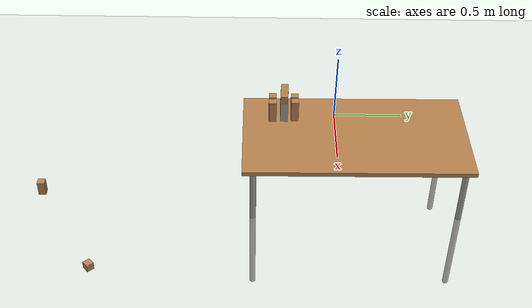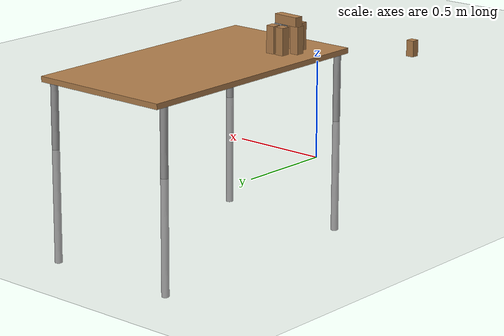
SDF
<sdf version="1.4">
 <world name="default">
  <model name="ground_plane">
   <static>1</static>
   <link name="link">
    <collision name="collision">
     <geometry><plane><normal>0 0 1</normal><size>100 100</size></plane></geometry>
     <surface><friction><ode><mu>100</mu><mu2>50</mu2></ode></friction></surface>
    </collision>
    <visual name="visual">
     <cast_shadows>0</cast_shadows>
     <geometry><plane><normal>0 0 1</normal><size>100 100</size></plane></geometry>
     <material>
      <script><uri>file://media/materials/scripts/gazebo.material</uri><name>Gazebo/Grey</name></script>
     </material>
    </visual>
    <velocity_decay><linear>0</linear><angular>0</angular></velocity_decay>
   </link>
  </model>
  <light name="sun" type="directional">
   <pose>0 0 10 0 -0 0</pose>
   <diffuse>0.8 0.8 0.8 1</diffuse>
   <specular>0.2 0.2 0.2 1</specular>
   <attenuation>
    <range>1000</range>
    <constant>0.9</constant>
    <linear>0.01</linear>
    <quadratic>0.001</quadratic>
   </attenuation>
   <direction>-0.5 0.1 -0.9</direction>
  </light>
  <physics type="ode">
   <real_time_update_rate>1000</real_time_update_rate>
   <gravity>0 0 -9.81</gravity>
   <max_step_size>0.001</max_step_size>
   <real_time_factor>1</real_time_factor>
  </physics>
  <scene><ambient>0.4 0.4 0.4 1</ambient><background>0.7 0.7 0.7 1</background><shadows>1</shadows></scene>
  <spherical_coordinates>
   <surface_model>EARTH_WGS84</surface_model>
   <latitude_deg>0</latitude_deg>
   <longitude_deg>0</longitude_deg>
   <elevation>0</elevation>
   <heading_deg>0</heading_deg>
  </spherical_coordinates>
  <model name="custom_2">
   <link name="link">
    <inertial>
     <mass>0.0565</mass>
     <inertia>
      <ixx>2.35417e-05</ixx>
      <ixy>0</ixy>
      <ixz>0</ixz>
      <iyy>2.35417e-05</iyy>
      <iyz>0</iyz>
      <izz>2.35417e-05</izz>
     </inertia>
    </inertial>
    <collision name="collision">
     <geometry><box><size>0.05 0.05 0.1</size></box></geometry>
     <surface><contact><ode><max_vel>0.1</max_vel><min_depth>0.001</min_depth></ode></contact></surface>
    </collision>
    <visual name="visual">
     <geometry><box><size>0.05 0.05 0.1</size></box></geometry>
     <material>
      <script><uri>file://media/materials/scripts/gazebo.material</uri><name>Gazebo/Wood</name></script>
     </material>
    </visual>
    <velocity_decay><linear>0</linear><angular>0</angular></velocity_decay>
   </link>
   <pose>0.913406 -2.02896 0.049512 -5.6e-05 -0 -0.000109</pose>
   <static>0</static>
  </model>
  <model name="custom_3">
   <link name="link">
    <inertial>
     <mass>0.0565</mass>
     <inertia>
      <ixx>2.35417e-05</ixx>
      <ixy>0</ixy>
      <ixz>0</ixz>
      <iyy>2.35417e-05</iyy>
      <iyz>0</iyz>
      <izz>2.35417e-05</izz>
     </inertia>
    </inertial>
    <collision name="collision">
     <geometry><box><size>0.05 0.05 0.05</size></box></geometry>
     <surface><contact><ode><max_vel>0.1</max_vel><min_depth>0.001</min_depth></ode></contact></surface>
    </collision>
    <visual name="visual">
     <geometry><box><size>0.05 0.05 0.05</size></box></geometry>
     <material>
      <script><uri>file://media/materials/scripts/gazebo.material</uri><name>Gazebo/Wood</name></script>
     </material>
    </visual>
    <velocity_decay><linear>0</linear><angular>0</angular></velocity_decay>
   </link>
   <pose>1.60991 -1.60356 0.024984 0.000105 0.000442 0.713165</pose>
   <static>0</static>
  </model>
  <model name="custom_1_0">
   <link name="link">
    <inertial>
     <mass>0.0565</mass>
     <inertia>
      <ixx>2.35417e-05</ixx>
      <ixy>0</ixy>
      <ixz>0</ixz>
      <iyy>2.35417e-05</iyy>
      <iyz>0</iyz>
      <izz>2.35417e-05</izz>
     </inertia>
    </inertial>
    <collision name="collision">
     <geometry><box><size>0.05 0.05 0.15</size></box></geometry>
     <surface><contact><ode><max_vel>0.1</max_vel><min_depth>0.001</min_depth></ode></contact></surface>
    </collision>
    <visual name="visual">
     <geometry><box><size>0.05 0.05 0.15</size></box></geometry>
     <material>
      <script><uri>file://media/materials/scripts/gazebo.material</uri><name>Gazebo/Wood</name></script>
     </material>
    </visual>
    <velocity_decay><linear>0</linear><angular>0</angular></velocity_decay>
   </link>
   <pose>0.566712 -0.320852 0.467843 0.004757 -0.000388 -1.53801</pose>
   <static>0</static>
  </model>
  <model name="custom_table">
   <static>1</static>
   <link name="link">
    <collision name="surface">
     <geometry><box><size>1.5 0.8 0.03</size></box></geometry>
     <surface><friction><ode><mu>0.6</mu><mu2>0.6</mu2></ode></friction></surface>
    </collision>
    <visual name="visual1">
     <geometry><box><size>1.5 0.8 0.03</size></box></geometry>
     <material>
      <script><uri>file://media/materials/scripts/gazebo.material</uri><name>Gazebo/Wood</name></script>
     </material>
    </visual>
    <collision name="front_left_leg">
     <pose>0.68 0.38 0.5 0 -0 0</pose>
     <geometry><cylinder><radius>0.02</radius><length>1</length></cylinder></geometry>
    </collision>
    <visual name="front_left_leg">
     <pose>0.68 0.38 0.5 0 -0 0</pose>
     <geometry><cylinder><radius>0.02</radius><length>1</length></cylinder></geometry>
     <material>
      <script><uri>file://media/materials/scripts/gazebo.material</uri><name>Gazebo/Grey</name></script>
     </material>
    </visual>
    <collision name="front_right_leg">
     <pose>0.68 -0.38 0.5 0 -0 0</pose>
     <geometry><cylinder><radius>0.02</radius><length>1</length></cylinder></geometry>
    </collision>
    <visual name="front_right_leg">
     <pose>0.68 -0.38 0.5 0 -0 0</pose>
     <geometry><cylinder><radius>0.02</radius><length>1</length></cylinder></geometry>
     <material>
      <script><uri>file://media/materials/scripts/gazebo.material</uri><name>Gazebo/Grey</name></script>
     </material>
    </visual>
    <collision name="back_right_leg">
     <pose>-0.68 -0.38 0.5 0 -0 0</pose>
     <geometry><cylinder><radius>0.02</radius><length>1</length></cylinder></geometry>
    </collision>
    <visual name="back_right_leg">
     <pose>-0.68 -0.38 0.5 0 -0 0</pose>
     <geometry><cylinder><radius>0.02</radius><length>1</length></cylinder></geometry>
     <material>
      <script><uri>file://media/materials/scripts/gazebo.material</uri><name>Gazebo/Grey</name></script>
     </material>
    </visual>
    <collision name="back_left_leg">
     <pose>-0.68 0.38 0.5 0 -0 0</pose>
     <geometry><cylinder><radius>0.02</radius><length>1</length></cylinder></geometry>
    </collision>
    <visual name="back_left_leg">
     <pose>-0.68 0.38 0.5 0 -0 0</pose>
     <geometry><cylinder><radius>0.02</radius><length>1</length></cylinder></geometry>
     <material>
      <script><uri>file://media/materials/scripts/gazebo.material</uri><name>Gazebo/Grey</name></script>
     </material>
    </visual>
    <velocity_decay><linear>0</linear><angular>0</angular></velocity_decay>
   </link>
   <pose>0.728373 0.081413 0.378545 3.13683 0.000225 1.5819</pose>
  </model>
  <model name="custom_1_1">
   <link name="link">
    <inertial>
     <mass>0.0565</mass>
     <inertia>
      <ixx>2.35417e-05</ixx>
      <ixy>0</ixy>
      <ixz>0</ixz>
      <iyy>2.35417e-05</iyy>
      <iyz>0</iyz>
      <izz>2.35417e-05</izz>
     </inertia>
    </inertial>
    <collision name="collision">
     <geometry><box><size>0.05 0.05 0.15</size></box></geometry>
     <surface><contact><ode><max_vel>0.1</max_vel><min_depth>0.001</min_depth></ode></contact></surface>
    </collision>
    <visual name="visual">
     <geometry><box><size>0.05 0.05 0.15</size></box></geometry>
     <material>
      <script><uri>file://media/materials/scripts/gazebo.material</uri><name>Gazebo/Wood</name></script>
     </material>
    </visual>
    <velocity_decay><linear>0</linear><angular>0</angular></velocity_decay>
   </link>
   <pose>0.520106 -0.391671 0.567609 -0.010074 1.56576 -0.059112</pose>
   <static>0</static>
  </model>
  <model name="custom_1_2">
   <link name="link">
    <inertial>
     <mass>0.0565</mass>
     <inertia>
      <ixx>2.35417e-05</ixx>
      <ixy>0</ixy>
      <ixz>0</ixz>
      <iyy>2.35417e-05</iyy>
      <iyz>0</iyz>
      <izz>2.35417e-05</izz>
     </inertia>
    </inertial>
    <collision name="collision">
     <geometry><box><size>0.05 0.05 0.15</size></box></geometry>
     <surface><contact><ode><max_vel>0.1</max_vel><min_depth>0.001</min_depth></ode></contact></surface>
    </collision>
    <visual name="visual">
     <geometry><box><size>0.05 0.05 0.15</size></box></geometry>
     <material>
      <script><uri>file://media/materials/scripts/gazebo.material</uri><name>Gazebo/Wood</name></script>
     </material>
    </visual>
    <velocity_decay><linear>0</linear><angular>0</angular></velocity_decay>
   </link>
   <pose>0.462443 -0.392247 0.467297 0.000664 -0.005691 0.024383</pose>
   <static>0</static>
  </model>
  <model name="custom_1_3">
   <link name="link">
    <inertial>
     <mass>0.0565</mass>
     <inertia>
      <ixx>2.35417e-05</ixx>
      <ixy>0</ixy>
      <ixz>0</ixz>
      <iyy>2.35417e-05</iyy>
      <iyz>0</iyz>
      <izz>2.35417e-05</izz>
     </inertia>
    </inertial>
    <collision name="collision">
     <geometry><box><size>0.05 0.05 0.15</size></box></geometry>
     <surface><contact><ode><max_vel>0.1</max_vel><min_depth>0.001</min_depth></ode></contact></surface>
    </collision>
    <visual name="visual">
     <geometry><box><size>0.05 0.05 0.15</size></box></geometry>
     <material>
      <script><uri>file://media/materials/scripts/gazebo.material</uri><name>Gazebo/Wood</name></script>
     </material>
    </visual>
    <velocity_decay><linear>0</linear><angular>0</angular></velocity_decay>
   </link>
   <pose>0.575518 -0.470533 0.46791 -0.004754 0.000242 1.61138</pose>
   <static>0</static>
  </model>
  <model name="custom_1_4">
   <link name="link">
    <inertial>
     <mass>0.0565</mass>
     <inertia>
      <ixx>2.35417e-05</ixx>
      <ixy>0</ixy>
      <ixz>0</ixz>
      <iyy>2.35417e-05</iyy>
      <iyz>0</iyz>
      <izz>2.35417e-05</izz>
     </inertia>
    </inertial>
    <collision name="collision">
     <geometry><box><size>0.05 0.05 0.15</size></box></geometry>
     <surface><contact><ode><max_vel>0.1</max_vel><min_depth>0.001</min_depth></ode></contact></surface>
    </collision>
    <visual name="visual">
     <geometry><box><size>0.05 0.05 0.15</size></box></geometry>
     <material>
      <script><uri>file://media/materials/scripts/gazebo.material</uri><name>Gazebo/Wood</name></script>
     </material>
    </visual>
    <velocity_decay><linear>0</linear><angular>0</angular></velocity_decay>
   </link>
   <pose>0.504509 -0.322225 0.466913 0.004305 -0.001645 3.4e-05</pose>
   <static>0</static>
  </model>
  <model name="custom_1_5">
   <link name="link">
    <inertial>
     <mass>0.0565</mass>
     <inertia>
      <ixx>2.35417e-05</ixx>
      <ixy>0</ixy>
      <ixz>0</ixz>
      <iyy>2.35417e-05</iyy>
      <iyz>0</iyz>
      <izz>2.35417e-05</izz>
     </inertia>
    </inertial>
    <collision name="collision">
     <geometry><box><size>0.05 0.05 0.15</size></box></geometry>
     <surface><contact><ode><max_vel>0.1</max_vel><min_depth>0.001</min_depth></ode></contact></surface>
    </collision>
    <visual name="visual">
     <geometry><box><size>0.05 0.05 0.15</size></box></geometry>
     <material>
      <script><uri>file://media/materials/scripts/gazebo.material</uri><name>Gazebo/Wood</name></script>
     </material>
    </visual>
    <velocity_decay><linear>0</linear><angular>0</angular></velocity_decay>
   </link>
   <pose>0.507986 -0.470582 0.467591 -0.000171 -0.004774 -0.000148</pose>
   <static>0</static>
  </model>
  <model name="target">
   <link name="link">
    <inertial>
     <mass>0.0565</mass>
     <inertia>
      <ixx>2.35417e-05</ixx>
      <ixy>0</ixy>
      <ixz>0</ixz>
      <iyy>2.35417e-05</iyy>
      <iyz>0</iyz>
      <izz>2.35417e-05</izz>
     </inertia>
    </inertial>
    <collision name="collision">
     <geometry><box><size>0.05 0.05 0.15</size></box></geometry>
     <surface><contact><ode><max_vel>0.1</max_vel><min_depth>0.001</min_depth></ode></contact></surface>
    </collision>
    <visual name="visual">
     <geometry><box><size>0.05 0.05 0.15</size></box></geometry>
     <material>
      <script><uri>file://media/materials/scripts/gazebo.material</uri><name>Gazebo/Grey</name></script>
     </material>
    </visual>
    <velocity_decay><linear>0</linear><angular>0</angular></velocity_decay>
   </link>
   <pose>0.572583 -0.392545 0.467876 3.8e-05 -0.0046 -0.000743</pose>
   <static>0</static>
  </model>
 </world>
</sdf>
